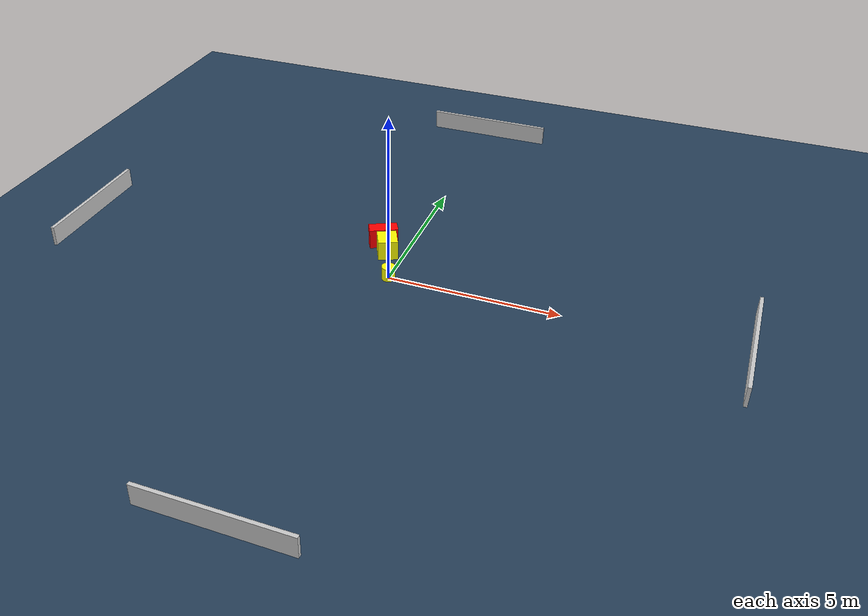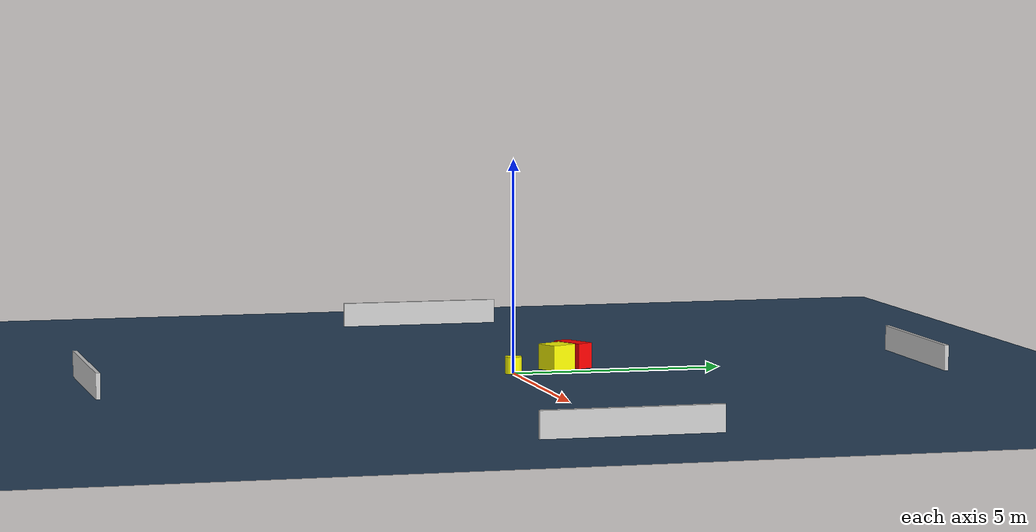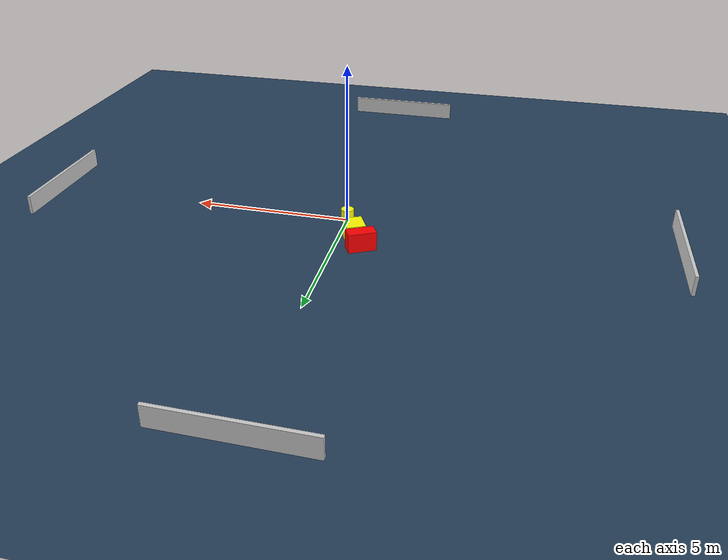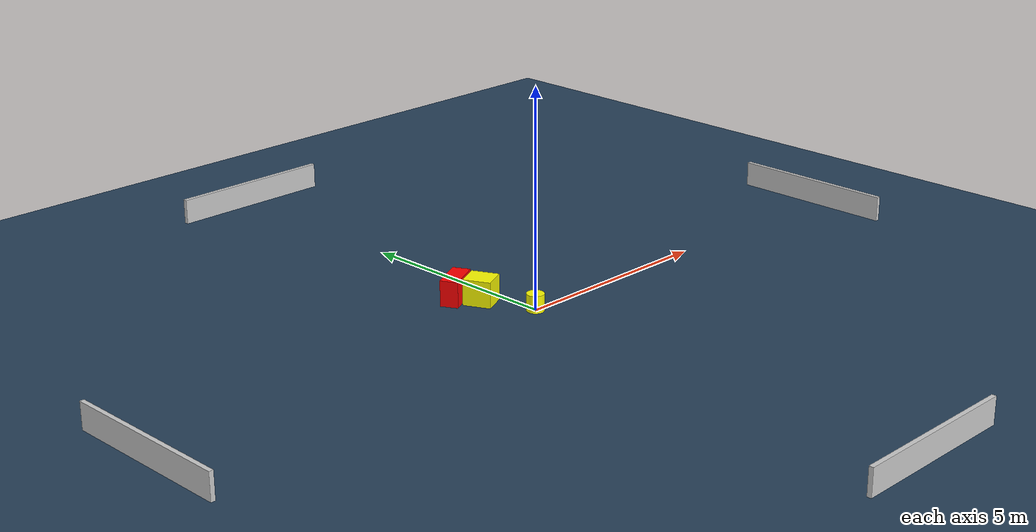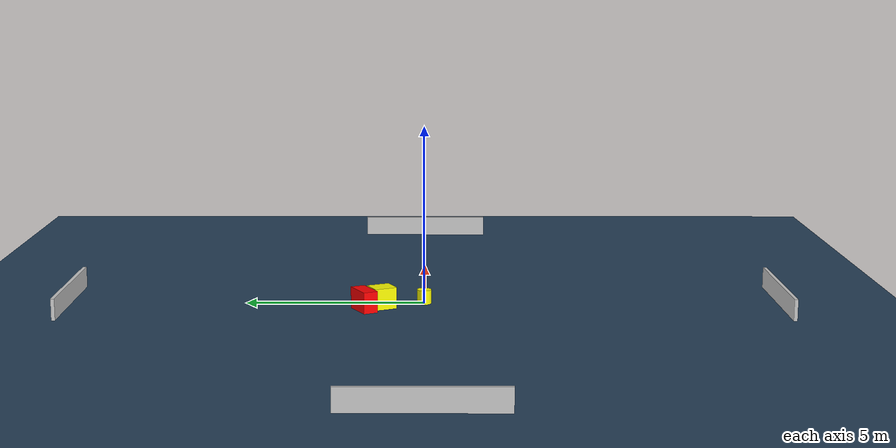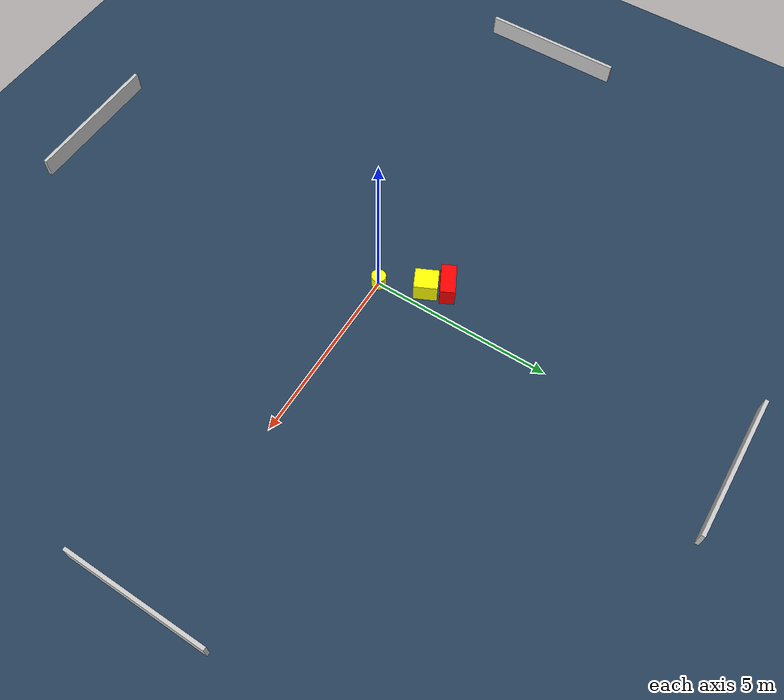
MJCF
<?xml version="1.0" ?>
<mujoco model="generated_environment">
  <option timestep="0.01" integrator="RK4" cone="elliptic"/>
  <default>
    <geom density="1"/>
  </default>
  <asset>
    <texture builtin="gradient" height="3072" name="skybox" rgb1="0.3 0.5 0.7" rgb2="0 0 0" type="skybox" width="512"/>
    <texture builtin="checker" height="300" name="groundplane" rgb1="0.2 0.3 0.4" rgb2="0.1 0.2 0.3" type="2d" width="300"/>
    <material name="groundplane" reflectance="0.2" texrepeat="5 5" texture="groundplane"/>
  </asset>
  <worldbody>
    <light dir="0 0 -1" directional="true" pos="0 0 1.5"/>
    <geom condim="3" friction="0.5 0.005 0.001" material="groundplane" name="floor" pos="0 0 0" size="0 0 0.05" type="plane"/>
    <body name="walls">
      <geom name="wall_1" condim="4" pos="-10.0 0.0 0.3" rgba="0.800000011920929 0.800000011920929 0.800000011920929 1.0" size="0.05 2.0 0.3" type="box"/>
      <geom name="wall_2" condim="4" pos="10.0 0.0 0.3" rgba="0.800000011920929 0.800000011920929 0.800000011920929 1.0" size="0.05 2.0 0.3" type="box"/>
      <geom name="wall_3" condim="4" pos="0.0 -10.0 0.3" rgba="0.800000011920929 0.800000011920929 0.800000011920929 1.0" size="2.0 0.05 0.3" type="box"/>
      <geom name="wall_4" condim="4" pos="0.0 10.0 0.3" rgba="0.800000011920929 0.800000011920929 0.800000011920929 1.0" size="2.0 0.05 0.3" type="box"/>
    </body>
    <body name="robot">
      <joint name="joint_x" type="slide" pos="0 0 0" axis="1 0 0"/>
      <joint name="joint_y" type="slide" pos="0 0 0" axis="0 1 0"/>
      <geom name="robot" type="cylinder" pos="0.0 0.0 0.2" size="0.2 0.2 0.0" mass="5.0" friction="1.0 0.005 0.0001" condim="4" rgba="1.0 1.0 0.0 1.0"/>
    </body>
    <body name="obstacle_1_movable">
      <geom name="obstacle_1_movable" condim="4" pos="-0.49699728505093427 1.1758437537625128 0.3" euler="0 0 115.6612536833112" friction="0.0 0.005 0.001" rgba="1.0 1.0 0.0 1.0" size="0.3211387320067528 0.2905782861106683 0.3" type="box" mass="0.1"/>
      <joint type="free"/>
    </body>
    <body name="obstacle_2_static">
      <geom name="obstacle_2_static" condim="4" pos="-0.8129521138067903 1.6593567876504465 0.3" euler="0 0 117.60928359717693" friction="0.0 0.005 0.001" rgba="1.0 0.0 0.0 1.0" size="0.205537316695755 0.42788392381614593 0.3" type="box"/>
    </body>
  </worldbody>
  <actuator>
    <motor name="actuator_x" joint="joint_x" gear="1" ctrlrange="-1 1"/>
    <motor name="actuator_y" joint="joint_y" gear="1" ctrlrange="-1 1"/>
  </actuator>
</mujoco>
